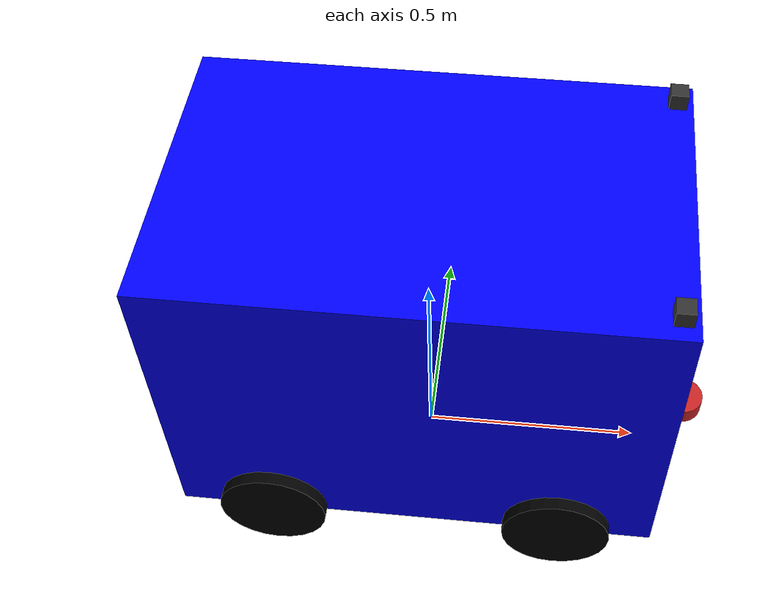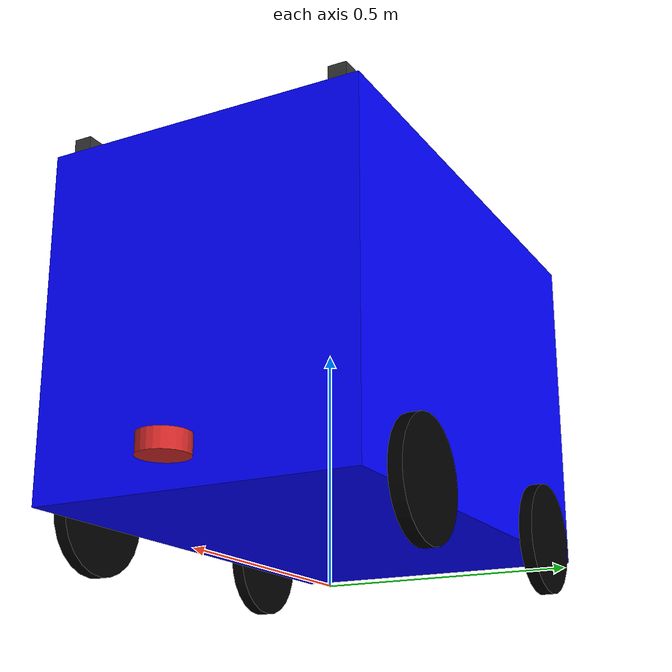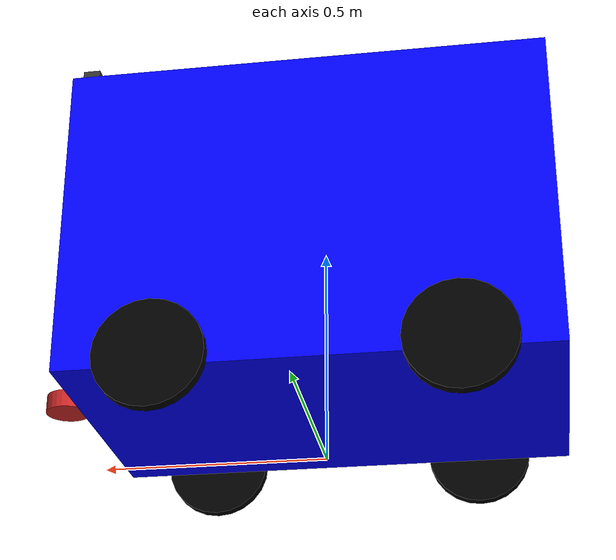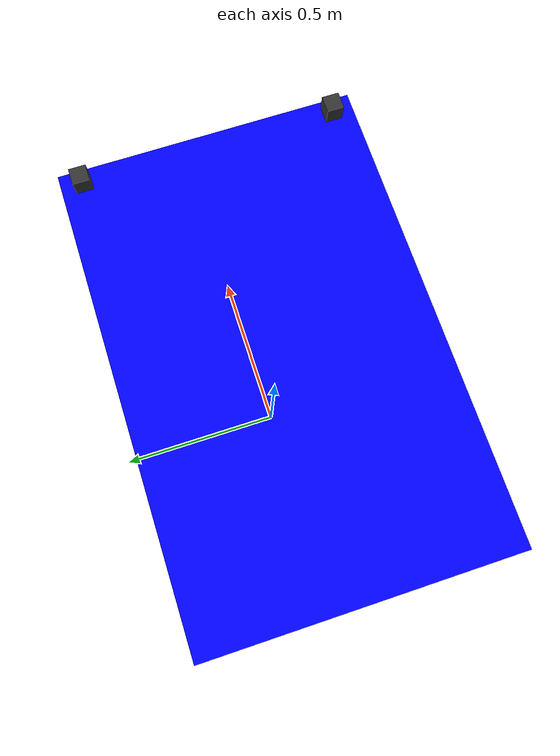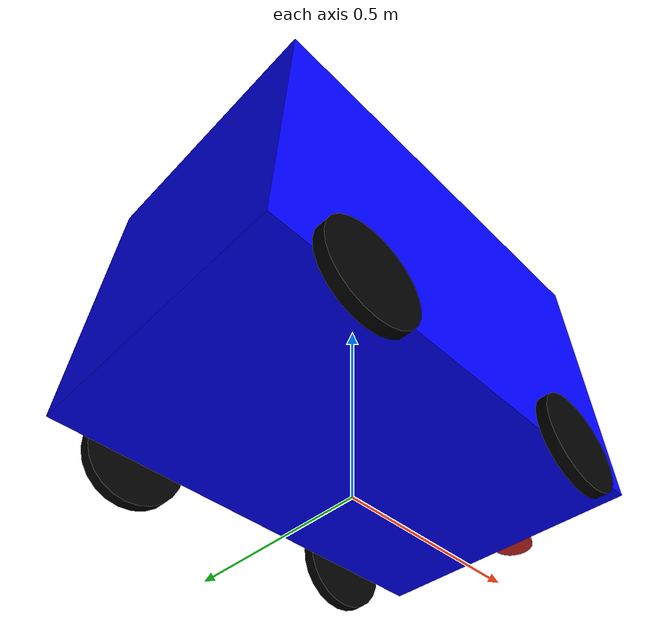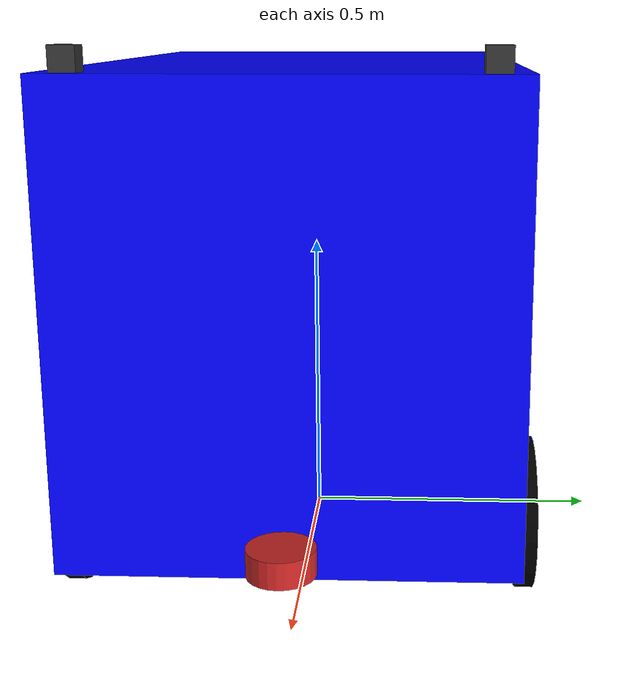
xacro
<?xml version="1.0"?>
<!-- http://wiki.ros.org/urdf/XML/link  -->
<robot xmlns:xacro="http://www.ros.org/wiki/xacro" name="four_wheels">
<!-- Add this line – default = 1.0 = original size -->
  <xacro:arg name="scale" default="1.0" />

  <!-- Scale everything from here -->
  <xacro:property name="S" value="$(arg scale)" />
    <!-- Define constants -->
    <xacro:property name="pi" value="1.570795"/>

    <xacro:property name="base_mass" value="20.68"/>
    <xacro:property name="base_length" value="1.0668"/>
    <xacro:property name="base_width" value="0.6858"/>
    <xacro:property name="base_height" value="0.7239"/>
    <xacro:property name="base_wheel_distance" value="0.02"/>

    <xacro:property name="wheel_mass" value="0.5"/>
    <xacro:property name="wheel_separation" value="${base_width + wheel_length}"/>
    <xacro:property name="wheel_radius" value="0.12"/>
    <xacro:property name="wheel_length" value="0.028"/>

    <xacro:property name="laser_mass" value="0.1"/>
    <xacro:property name="laser_radius" value="0.05"/>
    <xacro:property name="laser_length" value="0.04"/>
    <xacro:property name="laser_distance_z" value="-0.3"/>
    <xacro:property name="laser_distance_x" value="0.6"/>

    <xacro:property name="cam_mass" value="0.05"/>
    <xacro:property name="cam_length" value="0.0381"/>
    <xacro:property name="cam_width" value="0.0381"/>
    <xacro:property name="cam_height" value="0.0381"/>
    <xacro:property name="cam_z" value="0.38"/>
    <xacro:property name="cam_x" value="0.5"/>

    <!-- Include the common gazebo macros -->
    <xacro:include filename="$(find skid_steer_robot)/urdf/common_gazebo.xacro" />
    <xacro:include filename="$(find skid_steer_robot)/urdf/inertial_macro.xacro" />

    <!-- This is the base of the robot -->
    <link name="base_footprint"/>

    <!-- This is the body of the robot -->
    <link name="body_link">
        <xacro:inertial_box mass="${base_mass}" x="${base_length}" y="${base_width}" z="${base_height}">
            <origin xyz="0 0 0" rpy="0 0 0"/>
        </xacro:inertial_box>
        <visual>
            <origin rpy="0 0 0" xyz="0 0 0"/>
            <geometry>
                <box size="${base_length} ${base_width} ${base_height}" />
            </geometry>

            <material name="blue">
                <color rgba="0 0 1 1"/>
            </material>
        </visual>
        <collision>
            <origin rpy="0 0 0" xyz="0 0 0"/>
            <geometry>
                <box size="${base_length} ${base_width} ${base_height}" />
            </geometry>
        </collision>
    </link>

    <joint name="base_joint" type="fixed">
        <origin xyz="0.0 0.0 ${base_height/2 - base_wheel_distance + wheel_radius}" rpy="0.0 0.0 0.0"/>
        <parent link="base_footprint"/>
        <child link="body_link"/>
        <axis xyz="0.0 0.0 0.0"/>
        <limit lower="0.0" upper="0.0" effort="0.0" velocity="0.0"/>
    </joint>

    <!-- Define the wheel macro -->
    <xacro:macro name="wheel" params="name x y z">
        <joint name="${name}_joint" type="continuous" >
            <parent link="body_link"/>
            <child  link="${name}_link" />
            <origin xyz="${x} ${y} ${z}" rpy="0 0 0" />
            <axis xyz="0 1 0"/>
        </joint>
        <link name="${name}_link">
            <xacro:inertial_cylinder mass="${wheel_mass}" length="${wheel_length}" radius="${wheel_radius}">
                <origin xyz="0 0 0" rpy="0 0 0"/>
            </xacro:inertial_cylinder>
            <visual>
                <origin rpy="${pi} 0 0" xyz="0 0 0"/>
                <geometry>
                    <cylinder length="${wheel_length}" radius="${wheel_radius}"/>
                </geometry>

                <material name="black">
                    <color rgba="0 0 0 1"/>
                </material>
            </visual>
            <collision>
                <origin rpy="${pi} 0 0" xyz="0 0 0"/>
                <geometry>
                    <cylinder length="${wheel_length}" radius="${wheel_radius}"/>
                </geometry>
            </collision>
        </link>
    </xacro:macro>

    <xacro:wheel name="rear_right" x="${-base_length * 0.3}" y="${-base_width/2 - wheel_length/2}" z="${base_wheel_distance - base_height/2}"/>
    <xacro:wheel name="rear_left"  x="${-base_length * 0.3}" y="${base_width/2 + wheel_length/2}" z="${base_wheel_distance - base_height/2}"/>
    <xacro:wheel name="front_right" x="${base_length * 0.3}" y="${-base_width/2 - wheel_length/2}" z="${base_wheel_distance - base_height/2}"/>
    <xacro:wheel name="front_left" x="${base_length * 0.3}" y="${base_width/2 + wheel_length/2}" z="${base_wheel_distance - base_height/2}"/>

    <!-- Include the skid steering drive plugin -->
    <xacro:include filename="$(find skid_steer_robot)/urdf/skid_steering_drive_gazebo.xacro" />

    <!-- Include the lidar -->
    <xacro:include filename="$(find skid_steer_robot)/urdf/lidar.xacro" />

     <!-- Include the cameras -->
    <xacro:include filename="$(find skid_steer_robot)/urdf/cameras.xacro" />

</robot>

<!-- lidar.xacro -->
<robot xmlns:xacro="http://www.ros.org/wiki/xacro" >

    <joint name="laser_joint" type="fixed">
        <parent link="body_link"/>
        <child link="laser_link"/>
        <origin xyz="${laser_distance_x} 0 ${laser_distance_z}" rpy="0 0 0"/>
    </joint>

    <link name="laser_link">
        <visual>
            <geometry>
                <cylinder radius="${laser_radius}" length="${laser_length}"/>
            </geometry>
            <material name="red"/>
        </visual>
        <collision>
            <geometry>
                <cylinder radius="${laser_radius}" length="${laser_length}"/>
            </geometry>
        </collision>
        <xacro:inertial_cylinder mass="${laser_mass}" radius="${laser_radius}" length="${laser_length}">
            <origin xyz="0 0 0" rpy="0 0 0"/>
        </xacro:inertial_cylinder>
    </link>

    <gazebo reference="laser_link">
        <material>Gazebo/Red</material>

        <sensor name="laser" type="ray">
            <pose> 0 0 0 0 0 0 </pose>
            <visualize>true</visualize>
            <update_rate>10</update_rate>
            <ray>
                <scan>
                    <horizontal>
                        <samples>360</samples>
                        <min_angle>0</min_angle>
                        <max_angle>6.28</max_angle>
                    </horizontal>
                </scan>
                <range>
                    <min>0.22</min>
                    <max>6</max>
                </range>
            </ray>
            <plugin name="laser_controller" filename="libgazebo_ros_ray_sensor.so">
                <ros>
                    <argument>~/out:=scan</argument>

          	    <remapping>image_raw:=image_raw</remapping>
          	    <remapping>laser_info:=laser_info</remapping>

                </ros>
                <output_type>sensor_msgs/LaserScan</output_type>
                <frame_name>laser_link</frame_name>
            </plugin>
        </sensor>
    </gazebo>

</robot>

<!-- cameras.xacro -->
<robot xmlns:xacro="http://www.ros.org/wiki/xacro" name="stereo_cameras">

  <!-- Two cameras 23 inches = 0.5842 m apart center-to-center -->
  <xacro:property name="camera_separation" value="0.5842"/>   <!-- 23 inches -->
  <xacro:property name="camera_half_sep"   value="${camera_separation / 2}"/>

  <!-- Left camera -->
  <joint name="left_camera_joint" type="fixed">
    <parent link="body_link"/>
    <child link="left_camera_link"/>
    <origin xyz="${cam_x} ${ camera_half_sep} ${cam_z}" rpy="0 0 0"/>
  </joint>

  <link name="left_camera_link">
    <inertial>
      <mass value="${cam_mass}"/>
      <origin xyz="0 0 0" rpy="0 0 0"/>
      <inertia ixx="0.001" ixy="0" ixz="0" iyy="0.001" iyz="0" izz="0.001"/>
    </inertial>
    <visual>
      <origin xyz="0 0 0" rpy="0 0 0"/>
      <geometry>
        <box size="${cam_length} ${cam_width} ${cam_height}"/>
      </geometry>
      <material name="dark_grey"/>
    </visual>
    <collision>
      <origin xyz="0 0 0" rpy="0 0 0"/>
      <geometry>
        <box size="${cam_length} ${cam_width} ${cam_height}"/>
      </geometry>
    </collision>
  </link>

  <!-- Right camera -->
  <joint name="right_camera_joint" type="fixed">
    <parent link="body_link"/>
    <child link="right_camera_link"/>
    <origin xyz="${cam_x} ${-camera_half_sep} ${cam_z}" rpy="0 0 0"/>
  </joint>

  <link name="right_camera_link">
    <inertial>
      <mass value="${cam_mass}"/>
      <origin xyz="0 0 0" rpy="0 0 0"/>
      <inertia ixx="0.001" ixy="0" ixz="0" iyy="0.001" iyz="0" izz="0.001"/>
    </inertial>
    <visual>
      <origin xyz="0 0 0" rpy="0 0 0"/>
      <geometry>
        <box size="${cam_length} ${cam_width} ${cam_height}"/>
      </geometry>
      <material name="dark_grey"/>
    </visual>
    <collision>
      <origin xyz="0 0 0" rpy="0 0 0"/>
      <geometry>
        <box size="${cam_length} ${cam_width} ${cam_height}"/>
      </geometry>
    </collision>
  </link>

  <!-- Nice dark-grey material for both cameras -->
  <material name="dark_grey">
    <color rgba="0.2 0.2 0.2 1.0"/>
  </material>

<gazebo reference="left_camera_link">
    <sensor type="camera" name="left_camera">
      <update_rate>30</update_rate>
      <camera>
        <horizontal_fov>1.3962634</horizontal_fov> <!-- 80 deg -->
        <image>
          <width>1280</width>
          <height>720</height>
          <format>R8G8B8</format>
        </image>
        <clip>
          <near>0.02</near>
          <far>300</far>
        </clip>
      </camera>
      <plugin name="camera_controller" filename="libgazebo_ros_camera.so">
        <ros>
          <namespace>/left</namespace>
          <remapping>image_raw:=image_raw</remapping>
          <remapping>camera_info:=camera_info</remapping>
        </ros>
        <frame_name>left_camera_link</frame_name>
      </plugin>
    </sensor>
  </gazebo>

  <gazebo reference="right_camera_link">
    <sensor type="camera" name="right_camera">
      <update_rate>30</update_rate>
      <camera>
        <horizontal_fov>1.3962634</horizontal_fov> <!-- 80 deg -->
        <image>
          <width>1280</width>
          <height>720</height>
          <format>R8G8B8</format>
        </image>
        <clip>
          <near>0.02</near>
          <far>300</far>
        </clip>
      </camera>
      <plugin name="camera_controller" filename="libgazebo_ros_camera.so">
        <ros>
          <namespace>/right</namespace>
          <remapping>image_raw:=image_raw</remapping>
          <remapping>camera_info:=camera_info</remapping>
        </ros>
        <frame_name>right_camera_link</frame_name>
      </plugin>
    </sensor>
  </gazebo>

</robot>
